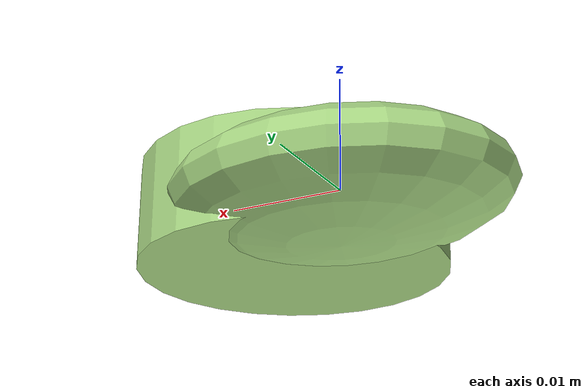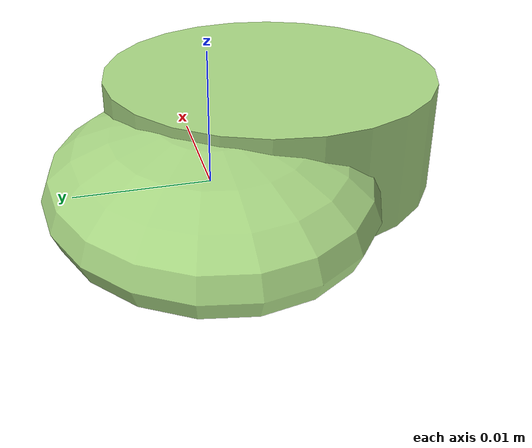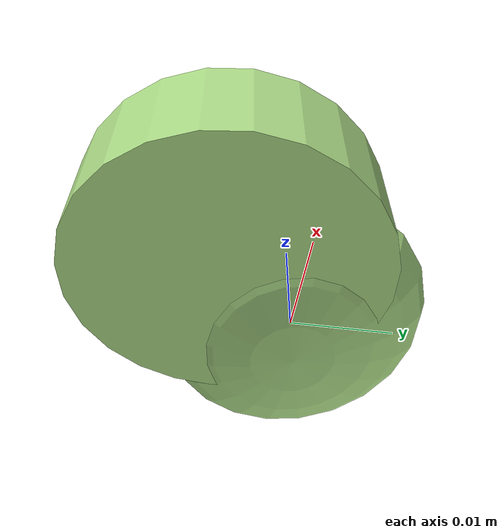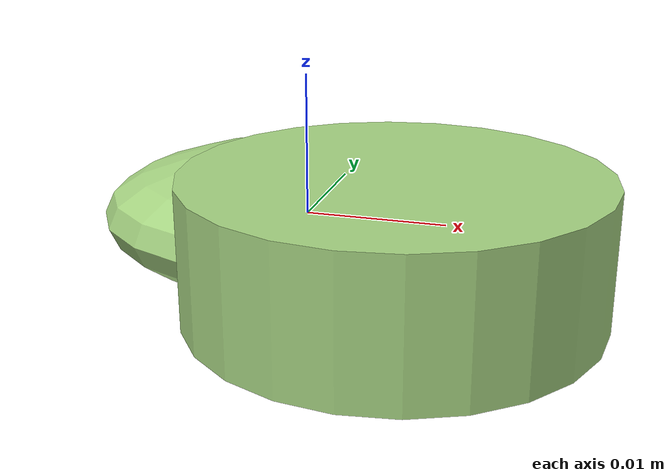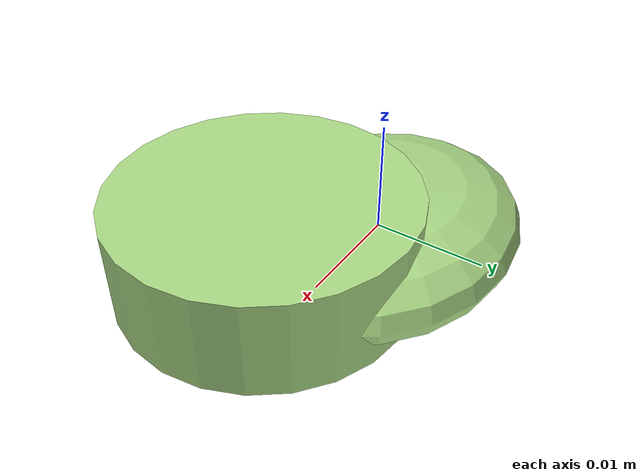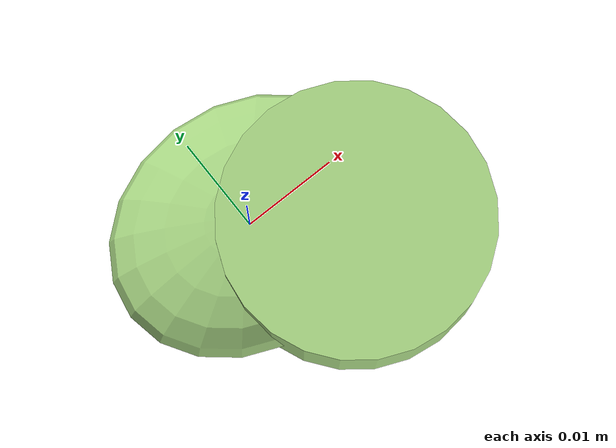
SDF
<?xml version="1.0" ?>
<!-- |    This document was autogenerated by xmacro from data/veggie_template/veggie_base.sdf.xacro  | -->
<!-- |    EDITING THIS FILE BY HAND IS NOT RECOMMENDED                                               | -->
<sdf version="1.8">
	<!-- Parameters -->
	<!-- Base -->
	<!-- Joint 0 -->
	<!-- Link 1 -->
	<!-- Joint 1 -->
	<!-- Link 2 -->
	<!-- Primitives -->
	<!-- All dimensions are half -->
	<!-- Object -->
	<model name="veggie">
		<!-- link0 -->
		<link name="link0">
			<inertial>
				<mass>0.0036629534883492773</mass>
				<inertia>
					<ixx>1.2589076163648637e-07</ixx>
					<ixy>0</ixy>
					<ixz>0</ixz>
					<iyy>1.7702540182648465e-07</iyy>
					<iyz>0</iyz>
					<izz>2.682230006085935e-07</izz>
				</inertia>
			</inertial>
			<visual name="link0_visual">
				<pose>0 0 0 0 0 0</pose>
				<geometry>
					<ellipsoid>
						<radii>0.014763623385002271 0.01217229787264061 0.004866046443200422</radii>
					</ellipsoid>
				</geometry>
				<material>
					<ambient>0.659 0.839 0.514 1</ambient>
					<diffuse>0.659 0.839 0.514 1</diffuse>
					<specular>0 0 0 0</specular>
					<emissive>0 0 0 1</emissive>
				</material>
			</visual>
			<collision name="link0_collision">
				<pose>0 0 0 0 0 0 </pose>
				<geometry>
					<ellipsoid>
						<radii>0.014763623385002271 0.01217229787264061 0.004866046443200422</radii>
					</ellipsoid>
				</geometry>
			</collision>
		</link>
		<!-- link1 -->
		<joint name="joint0" type="fixed">
			<pose relative_to="link0">0.0078652199513961 -0.006709022648779174 0.0008743395401726393 0.0 0.0 0.0</pose>
			<parent>link0</parent>
			<child>link1</child>
		</joint>
		<link name="link1">
			<pose relative_to="joint0">0 0 0 0 0 0</pose>
			<inertial>
				<mass>0.0053342992938641325</mass>
				<inertia>
					<ixx>2.848942810856656e-07</ixx>
					<ixy>0</ixy>
					<ixz>0</ixz>
					<iyy>2.848942810856656e-07</iyy>
					<iyz>0</iyz>
					<izz>4.955330673589912e-07</izz>
				</inertia>
			</inertial>
			<visual name="link1_visual">
				<pose>0 0 0 0 0 0</pose>
				<geometry>
					<cylinder>
						<radius>0.013630526409290794</radius>
						<length>0.00913905379700875</length>
					</cylinder>
				</geometry>
				<material>
					<ambient>0.659 0.839 0.514 1</ambient>
					<diffuse>0.659 0.839 0.514 1</diffuse>
					<specular>0 0 0 0</specular>
					<emissive>0 0 0 1</emissive>
				</material>
			</visual>
			<collision name="link1_collision">
				<pose>0 0 0 0 0 0 </pose>
				<geometry>
					<cylinder>
						<radius>0.013630526409290794</radius>
						<length>0.00913905379700875</length>
					</cylinder>
				</geometry>
			</collision>
		</link>
		<!-- link2 -->
	</model>
</sdf>
